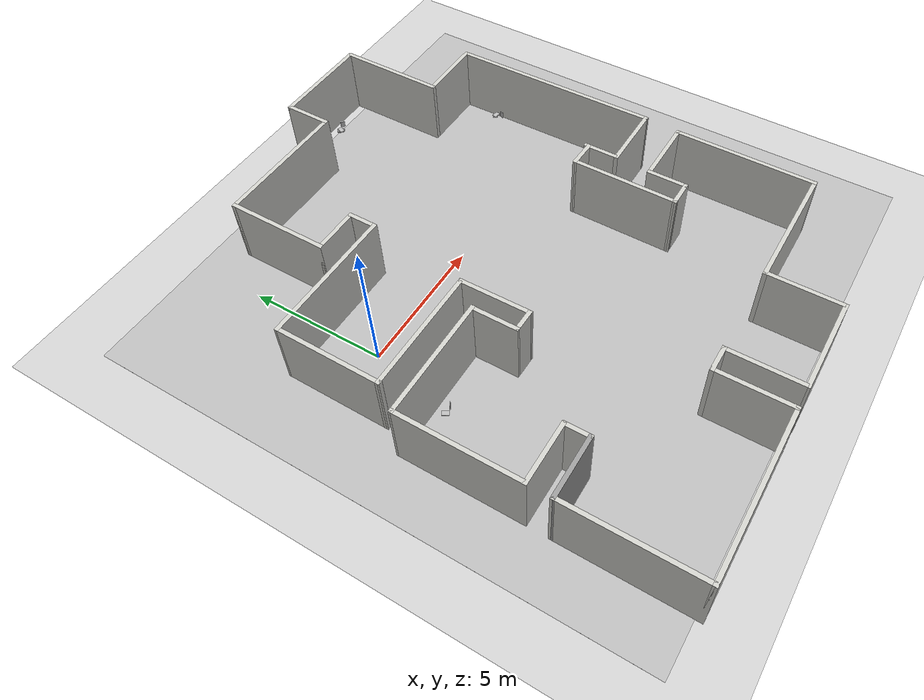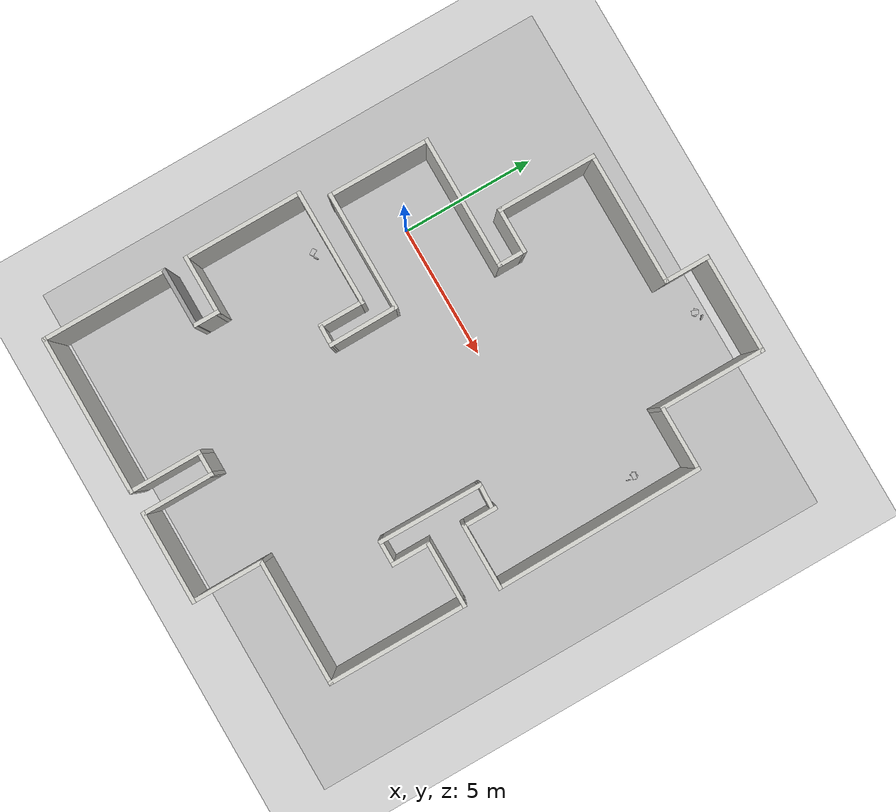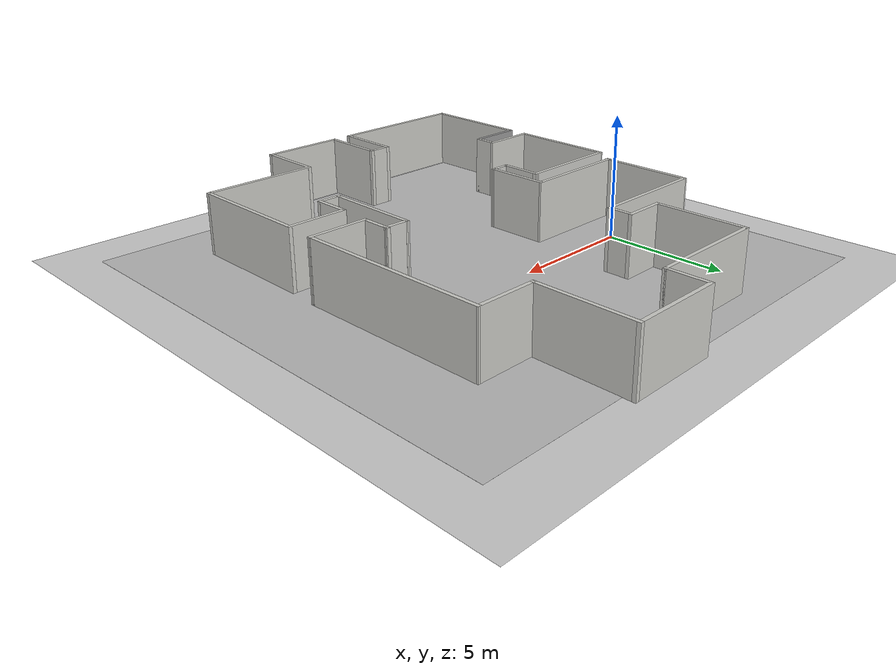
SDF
<sdf version="1.6">
 <world name="default">
  <light name="sun" type="directional">
   <pose>0 0 10 0 -0 0</pose>
   <diffuse>0.8 0.8 0.8 1</diffuse>
   <specular>0.2 0.2 0.2 1</specular>
   <attenuation>
    <range>1000</range>
    <constant>0.9</constant>
    <linear>0.01</linear>
    <quadratic>0.001</quadratic>
   </attenuation>
   <direction>-0.5 0.1 -0.9</direction>
  </light>
  <model name="ground_plane">
   <static>1</static>
   <link name="link">
    <collision name="collision">
     <geometry><plane><normal>0 0 1</normal><size>100 100</size></plane></geometry>
     <surface><friction><ode><mu>100</mu><mu2>50</mu2></ode></friction></surface>
    </collision>
    <visual name="visual">
     <cast_shadows>0</cast_shadows>
     <geometry><plane><normal>0 0 1</normal><size>100 100</size></plane></geometry>
     <material>
      <script><uri>file://media/materials/scripts/gazebo.material</uri><name>Gazebo/Grey</name></script>
     </material>
    </visual>
   </link>
  </model>
  <gravity>0 0 -9.8</gravity>
  <magnetic_field>6e-06 2.3e-05 -4.2e-05</magnetic_field>
  <atmosphere type="adiabatic"/>
  <physics name="default_physics" default="0" type="ode">
   <max_step_size>0.001</max_step_size>
   <real_time_factor>1</real_time_factor>
   <real_time_update_rate>1000</real_time_update_rate>
  </physics>
  <scene><ambient>0.4 0.4 0.4 1</ambient><background>0.7 0.7 0.7 1</background><shadows>1</shadows></scene>
  <audio><device>default</device></audio>
  <spherical_coordinates>
   <surface_model>EARTH_WGS84</surface_model>
   <latitude_deg>0</latitude_deg>
   <longitude_deg>0</longitude_deg>
   <elevation>0</elevation>
   <heading_deg>0</heading_deg>
  </spherical_coordinates>
  <model name="six_rooms_mathias">
   <model name="six_rooms">
    <model name="six_rooms">
     <pose>3e-06 -2e-06 0 0 -0 0</pose>
     <link name="Wall_10">
      <collision name="Wall_10_Collision">
       <geometry><box><size>2.25 0.15 2.5</size></box></geometry>
       <pose>0 0 1.25 0 -0 0</pose>
      </collision>
      <visual name="Wall_10_Visual">
       <pose>0 0 1.25 0 -0 0</pose>
       <geometry><box><size>2.25 0.15 2.5</size></box></geometry>
       <material>
        <script><uri>file://media/materials/scripts/gazebo.material</uri><name>Gazebo/CeilingTiled</name></script>
        <ambient>1 1 1 1</ambient>
       </material>
       <meta><layer>0</layer></meta>
      </visual>
      <pose>4.825 -6.31896 0 0 -0 1.5708</pose>
     </link>
     <link name="Wall_11">
      <collision name="Wall_11_Collision">
       <geometry><box><size>1 0.15 2.5</size></box></geometry>
       <pose>0 0 1.25 0 -0 0</pose>
      </collision>
      <visual name="Wall_11_Visual">
       <pose>0 0 1.25 0 -0 0</pose>
       <geometry><box><size>1 0.15 2.5</size></box></geometry>
       <material>
        <script><uri>file://media/materials/scripts/gazebo.material</uri><name>Gazebo/CeilingTiled</name></script>
        <ambient>1 1 1 1</ambient>
       </material>
       <meta><layer>0</layer></meta>
      </visual>
      <pose>5.25 -5.26896 0 0 -0 0</pose>
     </link>
     <link name="Wall_12">
      <collision name="Wall_12_Collision">
       <geometry><box><size>2.25 0.15 2.5</size></box></geometry>
       <pose>0 0 1.25 0 -0 0</pose>
      </collision>
      <visual name="Wall_12_Visual">
       <pose>0 0 1.25 0 -0 0</pose>
       <geometry><box><size>2.25 0.15 2.5</size></box></geometry>
       <material>
        <script><uri>file://media/materials/scripts/gazebo.material</uri><name>Gazebo/Grey</name></script>
        <ambient>1 1 1 1</ambient>
       </material>
       <meta><layer>0</layer></meta>
      </visual>
      <pose>5.675 -6.31896 0 0 -0 -1.5708</pose>
     </link>
     <link name="Wall_13">
      <collision name="Wall_13_Collision">
       <geometry><box><size>4.75 0.15 2.5</size></box></geometry>
       <pose>0 0 1.25 0 -0 0</pose>
      </collision>
      <visual name="Wall_13_Visual">
       <pose>0 0 1.25 0 -0 0</pose>
       <geometry><box><size>4.75 0.15 2.5</size></box></geometry>
       <material>
        <script><uri>file://media/materials/scripts/gazebo.material</uri><name>Gazebo/CeilingTiled</name></script>
        <ambient>1 1 1 1</ambient>
       </material>
       <meta><layer>0</layer></meta>
      </visual>
      <pose>7.975 -7.36896 0 0 -0 0</pose>
     </link>
     <link name="Wall_14">
      <collision name="Wall_14_Collision">
       <geometry><box><size>6 0.15 2.5</size></box></geometry>
       <pose>0 0 1.25 0 -0 0</pose>
      </collision>
      <visual name="Wall_14_Visual">
       <pose>0 0 1.25 0 -0 0</pose>
       <geometry><box><size>6 0.15 2.5</size></box></geometry>
       <material>
        <script><uri>file://media/materials/scripts/gazebo.material</uri><name>Gazebo/CeilingTiled</name></script>
        <ambient>1 1 1 1</ambient>
       </material>
       <meta><layer>0</layer></meta>
      </visual>
      <pose>10.275 -4.44396 0 0 -0 1.5708</pose>
     </link>
     <link name="Wall_15">
      <collision name="Wall_15_Collision">
       <geometry><box><size>2.75 0.15 2.5</size></box></geometry>
       <pose>0 0 1.25 0 -0 0</pose>
      </collision>
      <visual name="Wall_15_Visual">
       <pose>0 0 1.25 0 -0 0</pose>
       <geometry><box><size>2.75 0.15 2.5</size></box></geometry>
       <material>
        <script><uri>file://media/materials/scripts/gazebo.material</uri><name>Gazebo/CeilingTiled</name></script>
        <ambient>1 1 1 1</ambient>
       </material>
       <meta><layer>0</layer></meta>
      </visual>
      <pose>8.975 -1.51896 0 0 -0 3.14159</pose>
     </link>
     <link name="Wall_16">
      <collision name="Wall_16_Collision">
       <geometry><box><size>1 0.15 2.5</size></box></geometry>
       <pose>0 0 1.25 0 -0 0</pose>
      </collision>
      <visual name="Wall_16_Visual">
       <pose>0 0 1.25 0 -0 0</pose>
       <geometry><box><size>1 0.15 2.5</size></box></geometry>
       <material>
        <script><uri>file://media/materials/scripts/gazebo.material</uri><name>Gazebo/CeilingTiled</name></script>
        <ambient>1 1 1 1</ambient>
       </material>
       <meta><layer>0</layer></meta>
      </visual>
      <pose>7.675 -1.09396 0 0 -0 1.5708</pose>
     </link>
     <link name="Wall_17">
      <collision name="Wall_17_Collision">
       <geometry><box><size>2.66863 0.15 2.5</size></box></geometry>
       <pose>0 0 1.25 0 -0 0</pose>
      </collision>
      <visual name="Wall_17_Visual">
       <pose>0 0 1.25 0 -0 0</pose>
       <geometry><box><size>2.66863 0.15 2.5</size></box></geometry>
       <material>
        <script><uri>file://media/materials/scripts/gazebo.material</uri><name>Gazebo/CeilingTiled</name></script>
        <ambient>1 1 1 1</ambient>
       </material>
       <meta><layer>0</layer></meta>
      </visual>
      <pose>8.93431 -0.668964 0 0 -0 0</pose>
     </link>
     <link name="Wall_18">
      <collision name="Wall_18_Collision">
       <geometry><box><size>3.5 0.15 2.5</size></box></geometry>
       <pose>0 0 1.25 0 -0 0</pose>
      </collision>
      <visual name="Wall_18_Visual">
       <pose>0 0 1.25 0 -0 0</pose>
       <geometry><box><size>3.5 0.15 2.5</size></box></geometry>
       <material>
        <script><uri>file://media/materials/scripts/gazebo.material</uri><name>Gazebo/CeilingTiled</name></script>
        <ambient>1 1 1 1</ambient>
       </material>
       <meta><layer>0</layer></meta>
      </visual>
      <pose>10.275 1.00604 0 0 -0 1.5708</pose>
     </link>
     <link name="Wall_19">
      <collision name="Wall_19_Collision">
       <geometry><box><size>2.66863 0.15 2.5</size></box></geometry>
       <pose>0 0 1.25 0 -0 0</pose>
      </collision>
      <visual name="Wall_19_Visual">
       <pose>0 0 1.25 0 -0 0</pose>
       <geometry><box><size>2.66863 0.15 2.5</size></box></geometry>
       <material>
        <script><uri>file://media/materials/scripts/gazebo.material</uri><name>Gazebo/CeilingTiled</name></script>
        <ambient>1 1 1 1</ambient>
       </material>
       <meta><layer>0</layer></meta>
      </visual>
      <pose>8.93431 2.68104 0 0 -0 3.14159</pose>
     </link>
     <link name="Wall_2">
      <collision name="Wall_2_Collision">
       <geometry><box><size>5 0.15 2.5</size></box></geometry>
       <pose>0 0 1.25 0 -0 0</pose>
      </collision>
      <visual name="Wall_2_Visual">
       <pose>0 0 1.25 0 -0 0</pose>
       <geometry><box><size>5 0.15 2.5</size></box></geometry>
       <material>
        <script><uri>file://media/materials/scripts/gazebo.material</uri><name>Gazebo/CeilingTiled</name></script>
        <ambient>1 1 1 1</ambient>
       </material>
       <meta><layer>0</layer></meta>
      </visual>
      <pose>-4.125 -4.34396 0 0 -0 -1.5708</pose>
     </link>
     <link name="Wall_20">
      <collision name="Wall_20_Collision">
       <geometry><box><size>4.75 0.15 2.5</size></box></geometry>
       <pose>0 0 1.25 0 -0 0</pose>
      </collision>
      <visual name="Wall_20_Visual">
       <pose>0 0 1.25 0 -0 0</pose>
       <geometry><box><size>4.75 0.15 2.5</size></box></geometry>
       <material>
        <script><uri>file://media/materials/scripts/gazebo.material</uri><name>Gazebo/CeilingTiled</name></script>
        <ambient>1 1 1 1</ambient>
       </material>
       <meta><layer>0</layer></meta>
      </visual>
      <pose>7.675 4.98104 0 0 -0 1.5708</pose>
     </link>
     <link name="Wall_21">
      <collision name="Wall_21_Collision">
       <geometry><box><size>5.25 0.15 2.5</size></box></geometry>
       <pose>0 0 1.25 0 -0 0</pose>
      </collision>
      <visual name="Wall_21_Visual">
       <pose>0 0 1.25 0 -0 0</pose>
       <geometry><box><size>5.25 0.15 2.5</size></box></geometry>
       <material>
        <script><uri>file://media/materials/scripts/gazebo.material</uri><name>Gazebo/CeilingTiled</name></script>
        <ambient>1 1 1 1</ambient>
       </material>
       <meta><layer>0</layer></meta>
      </visual>
      <pose>5.125 7.28104 0 0 -0 3.14159</pose>
     </link>
     <link name="Wall_22">
      <collision name="Wall_22_Collision">
       <geometry><box><size>2.5 0.15 2.5</size></box></geometry>
       <pose>0 0 1.25 0 -0 0</pose>
      </collision>
      <visual name="Wall_22_Visual">
       <pose>0 0 1.25 0 -0 0</pose>
       <geometry><box><size>2.5 0.15 2.5</size></box></geometry>
       <material>
        <script><uri>file://media/materials/scripts/gazebo.material</uri><name>Gazebo/CeilingTiled</name></script>
        <ambient>1 1 1 1</ambient>
       </material>
       <meta><layer>0</layer></meta>
      </visual>
      <pose>2.575 6.10604 0 0 -0 -1.5708</pose>
     </link>
     <link name="Wall_23">
      <collision name="Wall_23_Collision">
       <geometry><box><size>1.5 0.15 2.5</size></box></geometry>
       <pose>0 0 1.25 0 -0 0</pose>
      </collision>
      <visual name="Wall_23_Visual">
       <pose>0 0 1.25 0 -0 0</pose>
       <geometry><box><size>1.5 0.15 2.5</size></box></geometry>
       <material>
        <script><uri>file://media/materials/scripts/gazebo.material</uri><name>Gazebo/CeilingTiled</name></script>
        <ambient>1 1 1 1</ambient>
       </material>
       <meta><layer>0</layer></meta>
      </visual>
      <pose>3.25 4.93103 0 0 -0 0</pose>
     </link>
     <link name="Wall_24">
      <collision name="Wall_24_Collision">
       <geometry><box><size>1 0.15 2.5</size></box></geometry>
       <pose>0 0 1.25 0 -0 0</pose>
      </collision>
      <visual name="Wall_24_Visual">
       <pose>0 0 1.25 0 -0 0</pose>
       <geometry><box><size>1 0.15 2.5</size></box></geometry>
       <material>
        <script><uri>file://media/materials/scripts/gazebo.material</uri><name>Gazebo/CeilingTiled</name></script>
        <ambient>1 1 1 1</ambient>
       </material>
       <meta><layer>0</layer></meta>
      </visual>
      <pose>3.925 4.50604 0 0 -0 -1.5708</pose>
     </link>
     <link name="Wall_25">
      <collision name="Wall_25_Collision">
       <geometry><box><size>3.95187 0.15 2.5</size></box></geometry>
       <pose>0 0 1.25 0 -0 0</pose>
      </collision>
      <visual name="Wall_25_Visual">
       <pose>0 0 1.25 0 -0 0</pose>
       <geometry><box><size>3.95187 0.15 2.5</size></box></geometry>
       <material>
        <script><uri>file://media/materials/scripts/gazebo.material</uri><name>Gazebo/CeilingTiled</name></script>
        <ambient>1 1 1 1</ambient>
       </material>
       <meta><layer>0</layer></meta>
      </visual>
      <pose>2.0241 4.09246 0 0 -0 3.13558</pose>
     </link>
     <link name="Wall_26">
      <collision name="Wall_26_Collision">
       <geometry><box><size>1.06501 0.15 2.5</size></box></geometry>
       <pose>0 0 1.25 0 -0 0</pose>
      </collision>
      <visual name="Wall_26_Visual">
       <pose>0 0 1.25 0 -0 0</pose>
       <geometry><box><size>1.06501 0.15 2.5</size></box></geometry>
       <material>
        <script><uri>file://media/materials/scripts/gazebo.material</uri><name>Gazebo/CeilingTiled</name></script>
        <ambient>1 1 1 1</ambient>
       </material>
       <meta><layer>0</layer></meta>
      </visual>
      <pose>0.139782 4.56109 0 0 -0 1.53453</pose>
     </link>
     <link name="Wall_27">
      <collision name="Wall_27_Collision">
       <geometry><box><size>1.25 0.15 2.5</size></box></geometry>
       <pose>0 0 1.25 0 -0 0</pose>
      </collision>
      <visual name="Wall_27_Visual">
       <pose>0 0 1.25 0 -0 0</pose>
       <geometry><box><size>1.25 0.15 2.5</size></box></geometry>
       <material>
        <script><uri>file://media/materials/scripts/gazebo.material</uri><name>Gazebo/CeilingTiled</name></script>
        <ambient>1 1 1 1</ambient>
       </material>
       <meta><layer>0</layer></meta>
      </visual>
      <pose>0.625 5.0183 0 0 -0 0</pose>
     </link>
     <link name="Wall_28">
      <collision name="Wall_28_Collision">
       <geometry><box><size>2.5 0.15 2.5</size></box></geometry>
       <pose>0 0 1.25 0 -0 0</pose>
      </collision>
      <visual name="Wall_28_Visual">
       <pose>0 0 1.25 0 -0 0</pose>
       <geometry><box><size>2.5 0.15 2.5</size></box></geometry>
       <material>
        <script><uri>file://media/materials/scripts/gazebo.material</uri><name>Gazebo/CeilingTiled</name></script>
        <ambient>1 1 1 1</ambient>
       </material>
       <meta><layer>0</layer></meta>
      </visual>
      <pose>1.25637 6.19329 0 0 -0 1.5708</pose>
     </link>
     <link name="Wall_29">
      <collision name="Wall_29_Collision">
       <geometry><box><size>7.83187 0.15 2.5</size></box></geometry>
       <pose>0 0 1.25 0 -0 0</pose>
      </collision>
      <visual name="Wall_29_Visual">
       <pose>0 0 1.25 0 -0 0</pose>
       <geometry><box><size>7.83187 0.15 2.5</size></box></geometry>
       <material>
        <script><uri>file://media/materials/scripts/gazebo.material</uri><name>Gazebo/CeilingTiled</name></script>
        <ambient>1 1 1 1</ambient>
       </material>
       <meta><layer>0</layer></meta>
      </visual>
      <pose>-2.58432 7.32467 0 0 -0 -3.13023</pose>
     </link>
     <link name="Wall_3">
      <collision name="Wall_3_Collision">
       <geometry><box><size>3.88482 0.15 2.5</size></box></geometry>
       <pose>0 0 1.25 0 -0 0</pose>
      </collision>
      <visual name="Wall_3_Visual">
       <pose>0 0 1.25 0 -0 0</pose>
       <geometry><box><size>3.88482 0.15 2.5</size></box></geometry>
       <material>
        <script><uri>file://media/materials/scripts/gazebo.material</uri><name>Gazebo/CeilingTiled</name></script>
        <ambient>1 1 1 1</ambient>
       </material>
       <meta><layer>0</layer></meta>
      </visual>
      <pose>-2.25761 -6.77771 0 0 -0 -0.004683</pose>
     </link>
     <link name="Wall_30">
      <collision name="Wall_30_Collision">
       <geometry><box><size>2.5 0.15 2.5</size></box></geometry>
       <pose>0 0 1.25 0 -0 0</pose>
      </collision>
      <visual name="Wall_30_Visual">
       <pose>0 0 1.25 0 -0 0</pose>
       <geometry><box><size>2.5 0.15 2.5</size></box></geometry>
       <material>
        <script><uri>file://media/materials/scripts/gazebo.material</uri><name>Gazebo/CeilingTiled</name></script>
        <ambient>1 1 1 1</ambient>
       </material>
       <meta><layer>0</layer></meta>
      </visual>
      <pose>-6.425 6.10604 0 0 -0 -1.5708</pose>
     </link>
     <link name="Wall_31">
      <collision name="Wall_31_Collision">
       <geometry><box><size>4 0.15 2.5</size></box></geometry>
       <pose>0 0 1.25 0 -0 0</pose>
      </collision>
      <visual name="Wall_31_Visual">
       <pose>0 0 1.25 0 -0 0</pose>
       <geometry><box><size>4 0.15 2.5</size></box></geometry>
       <material>
        <script><uri>file://media/materials/scripts/gazebo.material</uri><name>Gazebo/CeilingTiled</name></script>
        <ambient>1 1 1 1</ambient>
       </material>
       <meta><layer>0</layer></meta>
      </visual>
      <pose>-8.35 4.93103 0 0 -0 3.14159</pose>
     </link>
     <link name="Wall_32">
      <collision name="Wall_32_Collision">
       <geometry><box><size>3.75 0.15 2.5</size></box></geometry>
       <pose>0 0 1.25 0 -0 0</pose>
      </collision>
      <visual name="Wall_32_Visual">
       <pose>0 0 1.25 0 -0 0</pose>
       <geometry><box><size>3.75 0.15 2.5</size></box></geometry>
       <material>
        <script><uri>file://media/materials/scripts/gazebo.material</uri><name>Gazebo/CeilingTiled</name></script>
        <ambient>1 1 1 1</ambient>
       </material>
       <meta><layer>0</layer></meta>
      </visual>
      <pose>-10.275 3.13104 0 0 -0 -1.5708</pose>
     </link>
     <link name="Wall_33">
      <collision name="Wall_33_Collision">
       <geometry><box><size>1.75 0.15 2.5</size></box></geometry>
       <pose>0 0 1.25 0 -0 0</pose>
      </collision>
      <visual name="Wall_33_Visual">
       <pose>0 0 1.25 0 -0 0</pose>
       <geometry><box><size>1.75 0.15 2.5</size></box></geometry>
       <material>
        <script><uri>file://media/materials/scripts/gazebo.material</uri><name>Gazebo/CeilingTiled</name></script>
        <ambient>1 1 1 1</ambient>
       </material>
       <meta><layer>0</layer></meta>
      </visual>
      <pose>-9.475 1.33104 0 0 -0 0</pose>
     </link>
     <link name="Wall_34">
      <collision name="Wall_34_Collision">
       <geometry><box><size>5 0.15 2.5</size></box></geometry>
       <pose>0 0 1.25 0 -0 0</pose>
      </collision>
      <visual name="Wall_34_Visual">
       <pose>0 0 1.25 0 -0 0</pose>
       <geometry><box><size>5 0.15 2.5</size></box></geometry>
       <material>
        <script><uri>file://media/materials/scripts/gazebo.material</uri><name>Gazebo/CeilingTiled</name></script>
        <ambient>1 1 1 1</ambient>
       </material>
       <meta><layer>0</layer></meta>
      </visual>
      <pose>-8.675 -1.09396 0 0 -0 -1.5708</pose>
     </link>
     <link name="Wall_35">
      <collision name="Wall_35_Collision">
       <geometry><box><size>3.75 0.15 2.5</size></box></geometry>
       <pose>0 0 1.25 0 -0 0</pose>
      </collision>
      <visual name="Wall_35_Visual">
       <pose>0 0 1.25 0 -0 0</pose>
       <geometry><box><size>3.75 0.15 2.5</size></box></geometry>
       <material>
        <script><uri>file://media/materials/scripts/gazebo.material</uri><name>Gazebo/CeilingTiled</name></script>
        <ambient>1 1 1 1</ambient>
       </material>
       <meta><layer>0</layer></meta>
      </visual>
      <pose>-6.875 -3.51896 0 0 -0 0</pose>
     </link>
     <link name="Wall_36">
      <collision name="Wall_36_Collision">
       <geometry><box><size>1.75 0.15 2.5</size></box></geometry>
       <pose>0 0 1.25 0 -0 0</pose>
      </collision>
      <visual name="Wall_36_Visual">
       <pose>0 0 1.25 0 -0 0</pose>
       <geometry><box><size>1.75 0.15 2.5</size></box></geometry>
       <material>
        <script><uri>file://media/materials/scripts/gazebo.material</uri><name>Gazebo/CeilingTiled</name></script>
        <ambient>1 1 1 1</ambient>
       </material>
       <meta><layer>0</layer></meta>
      </visual>
      <pose>-5.075 -2.71896 0 0 -0 1.5708</pose>
     </link>
     <link name="Wall_37">
      <collision name="Wall_37_Collision">
       <geometry><box><size>1.1 0.15 2.5</size></box></geometry>
       <pose>0 0 1.25 0 -0 0</pose>
      </collision>
      <visual name="Wall_37_Visual">
       <pose>0 0 1.25 0 -0 0</pose>
       <geometry><box><size>1.1 0.15 2.5</size></box></geometry>
       <material>
        <script><uri>file://media/materials/scripts/gazebo.material</uri><name>Gazebo/CeilingTiled</name></script>
        <ambient>1 1 1 1</ambient>
       </material>
       <meta><layer>0</layer></meta>
      </visual>
      <pose>-4.6 -1.91896 0 0 -0 0</pose>
     </link>
     <link name="Wall_4">
      <collision name="Wall_4_Collision">
       <geometry><box><size>4.5 0.15 2.5</size></box></geometry>
       <pose>0 0 1.25 0 -0 0</pose>
      </collision>
      <visual name="Wall_4_Visual">
       <pose>0 0 1.25 0 -0 0</pose>
       <geometry><box><size>4.5 0.15 2.5</size></box></geometry>
       <material>
        <script><uri>file://media/materials/scripts/gazebo.material</uri><name>Gazebo/CeilingTiled</name></script>
        <ambient>1 1 1 1</ambient>
       </material>
       <meta><layer>0</layer></meta>
      </visual>
      <pose>-0.407709 -4.61145 0 0 -0 1.5708</pose>
     </link>
     <link name="Wall_5">
      <collision name="Wall_5_Collision">
       <geometry><box><size>2.61528 0.15 2.5</size></box></geometry>
       <pose>0 0 1.25 0 -0 0</pose>
      </collision>
      <visual name="Wall_5_Visual">
       <pose>0 0 1.25 0 -0 0</pose>
       <geometry><box><size>2.61528 0.15 2.5</size></box></geometry>
       <material>
        <script><uri>file://media/materials/scripts/gazebo.material</uri><name>Gazebo/CeilingTiled</name></script>
        <ambient>1 1 1 1</ambient>
       </material>
       <meta><layer>0</layer></meta>
      </visual>
      <pose>0.84239 -2.42771 0 0 -0 0.007095</pose>
     </link>
     <link name="Wall_6">
      <collision name="Wall_6_Collision">
       <geometry><box><size>0.870069 0.15 2.5</size></box></geometry>
       <pose>0 0 1.25 0 -0 0</pose>
      </collision>
      <visual name="Wall_6_Visual">
       <pose>0 0 1.25 0 -0 0</pose>
       <geometry><box><size>0.870069 0.15 2.5</size></box></geometry>
       <material>
        <script><uri>file://media/materials/scripts/gazebo.material</uri><name>Gazebo/CeilingTiled</name></script>
        <ambient>1 1 1 1</ambient>
       </material>
       <meta><layer>0</layer></meta>
      </visual>
      <pose>2.07 -2.77896 0 0 -0 -1.58468</pose>
     </link>
     <link name="Wall_7">
      <collision name="Wall_7_Collision">
       <geometry><box><size>1.75 0.15 2.5</size></box></geometry>
       <pose>0 0 1.25 0 -0 0</pose>
      </collision>
      <visual name="Wall_7_Visual">
       <pose>0 0 1.25 0 -0 0</pose>
       <geometry><box><size>1.75 0.15 2.5</size></box></geometry>
       <material>
        <script><uri>file://media/materials/scripts/gazebo.material</uri><name>Gazebo/CeilingTiled</name></script>
        <ambient>1 1 1 1</ambient>
       </material>
       <meta><layer>0</layer></meta>
      </visual>
      <pose>1.265 -3.14896 0 0 -0 3.14159</pose>
     </link>
     <link name="Wall_8">
      <collision name="Wall_8_Collision">
       <geometry><box><size>4.38001 0.15 2.5</size></box></geometry>
       <pose>0 0 1.25 0 -0 0</pose>
      </collision>
      <visual name="Wall_8_Visual">
       <pose>0 0 1.25 0 -0 0</pose>
       <geometry><box><size>4.38001 0.15 2.5</size></box></geometry>
       <material>
        <script><uri>file://media/materials/scripts/gazebo.material</uri><name>Gazebo/CeilingTiled</name></script>
        <ambient>1 1 1 1</ambient>
       </material>
       <meta><layer>0</layer></meta>
      </visual>
      <pose>0.47 -5.25396 0 0 -0 -1.56843</pose>
     </link>
     <link name="Wall_9">
      <collision name="Wall_9_Collision">
       <geometry><box><size>4.5 0.15 2.5</size></box></geometry>
       <pose>0 0 1.25 0 -0 0</pose>
      </collision>
      <visual name="Wall_9_Visual">
       <pose>0 0 1.25 0 -0 0</pose>
       <geometry><box><size>4.5 0.15 2.5</size></box></geometry>
       <material>
        <script><uri>file://media/materials/scripts/gazebo.material</uri><name>Gazebo/CeilingTiled</name></script>
        <ambient>1 1 1 1</ambient>
       </material>
       <meta><layer>0</layer></meta>
      </visual>
      <pose>2.65 -7.36896 0 0 -0 0</pose>
     </link>
     <static>1</static>
    </model>
    <static>0</static>
    <pose>0 4e-06 0 0 0 -1.5708</pose>
   </model>
   <static>0</static>
   <pose>4.83611 -2.17799 0 0 -0 0</pose>
  </model>
  <model name="Untitled_3">
   <model name="book_12">
    <link name="cover">
     <pose>0 -0.000108 0.015405 0 -0 0</pose>
     <visual name="visual">
      <geometry><box><size>0.245 0.16 0.03</size></box></geometry>
      <material>
       <script>
        <uri>model://book_12/materials/scripts</uri>
        <uri>model://book_12/materials/textures</uri>
        <name>book_12</name>
       </script>
      </material>
     </visual>
     <collision name="collision"><geometry><box><size>0.245 0.16 0.03</size></box></geometry></collision>
    </link>
    <link name="page">
     <pose>0 0.000608 0.015405 0 -0 0</pose>
     <visual name="visual">
      <geometry><box><size>0.24502 0.15862 0.028</size></box></geometry>
      <material>
       <lighting>1</lighting>
       <ambient>1 1 1 1</ambient>
       <diffuse>1 1 1 1</diffuse>
       <specular>0.01 0.01 0.01 1</specular>
       <emissive>0 0 0 1</emissive>
       <shader type="vertex"><normal_map>__default__</normal_map></shader>
      </material>
     </visual>
     <collision name="collision"><geometry><box><size>0.245 0.16 0.03</size></box></geometry></collision>
    </link>
    <static>1</static>
    <pose>4e-06 3e-06 0 0 -0 0</pose>
   </model>
   <static>0</static>
   <pose>7.59028 7.22247 0.607314 5e-06 -4e-06 -0.983222</pose>
  </model>
  <model name="Untitled_4">
   <model name="book_16">
    <link name="cover">
     <pose>0 -0.000108 0.015405 0 -0 0</pose>
     <visual name="visual">
      <geometry><box><size>0.245 0.16 0.03</size></box></geometry>
      <material>
       <script>
        <uri>model://book_16/materials/scripts</uri>
        <uri>model://book_16/materials/textures</uri>
        <name>book_16</name>
       </script>
      </material>
     </visual>
     <collision name="collision"><geometry><box><size>0.245 0.16 0.03</size></box></geometry></collision>
    </link>
    <link name="page">
     <pose>0 0.000608 0.015405 0 -0 0</pose>
     <visual name="visual">
      <geometry><box><size>0.24502 0.15862 0.028</size></box></geometry>
      <material>
       <lighting>1</lighting>
       <ambient>1 1 1 1</ambient>
       <diffuse>1 1 1 1</diffuse>
       <specular>0.01 0.01 0.01 1</specular>
       <emissive>0 0 0 1</emissive>
       <shader type="vertex"><normal_map>__default__</normal_map></shader>
      </material>
     </visual>
     <collision name="collision"><geometry><box><size>0.245 0.16 0.03</size></box></geometry></collision>
    </link>
    <static>1</static>
    <pose>-3e-06 3e-06 0 0 -0 0</pose>
   </model>
   <static>0</static>
   <pose>7.85571 7.33217 0.730236 -2.36341 -1.57079 -3.13439</pose>
  </model>
  <model name="Untitled_5">
   <model name="book_4">
    <link name="cover">
     <pose>0 -0.000108 0.01 0 -0 0</pose>
     <visual name="visual">
      <geometry><box><size>0.245 0.16 0.02</size></box></geometry>
      <material>
       <script>
        <uri>model://book_4/materials/scripts</uri>
        <uri>model://book_4/materials/textures</uri>
        <name>book_4</name>
       </script>
      </material>
      <cast_shadows>0</cast_shadows>
     </visual>
     <collision name="collision"><geometry><box><size>0.245 0.16 0.02</size></box></geometry></collision>
    </link>
    <link name="page">
     <pose>0 0.000608 0.01 0 -0 0</pose>
     <visual name="visual">
      <geometry><box><size>0.24502 0.15862 0.018</size></box></geometry>
      <material>
       <lighting>1</lighting>
       <ambient>1 1 1 1</ambient>
       <diffuse>1 1 1 1</diffuse>
       <specular>0.01 0.01 0.01 1</specular>
       <emissive>0 0 0 1</emissive>
       <shader type="vertex"><normal_map>__default__</normal_map></shader>
      </material>
      <cast_shadows>0</cast_shadows>
     </visual>
     <collision name="collision"><geometry><box><size>0.245 0.16 0.018</size></box></geometry></collision>
    </link>
    <static>1</static>
    <pose>4e-06 -5e-06 0 0 -0 0</pose>
   </model>
   <static>0</static>
   <pose>11.412 2.53575 0.596711 0 -0 0.407119</pose>
  </model>
  <model name="Untitled_6">
   <model name="book_7">
    <link name="cover">
     <pose>0 -0.000108 0.005 0 -0 0</pose>
     <visual name="visual">
      <geometry><box><size>0.245 0.16 0.01</size></box></geometry>
      <material>
       <script>
        <uri>model://book_7/materials/scripts</uri>
        <uri>model://book_7/materials/textures</uri>
        <name>book_7</name>
       </script>
      </material>
     </visual>
     <collision name="collision"><geometry><box><size>0.245 0.16 0.01</size></box></geometry></collision>
    </link>
    <link name="page">
     <pose>0 0.000608 0.005 0 -0 0</pose>
     <visual name="visual">
      <geometry><box><size>0.24502 0.15862 0.008</size></box></geometry>
      <material>
       <lighting>1</lighting>
       <ambient>1 1 1 1</ambient>
       <diffuse>1 1 1 1</diffuse>
       <specular>0.01 0.01 0.01 1</specular>
       <emissive>0 0 0 1</emissive>
       <shader type="vertex"><normal_map>__default__</normal_map></shader>
      </material>
     </visual>
     <collision name="collision"><geometry><box><size>0.245 0.16 0.008</size></box></geometry></collision>
    </link>
    <static>1</static>
    <pose>1e-06 2e-06 0 0 -0 0</pose>
   </model>
   <static>0</static>
   <pose>11.4559 2.27255 0.727891 2.88786 -1.57079 3.13985</pose>
  </model>
  <model name="Untitled_4_clone">
   <model name="book_16">
    <link name="cover">
     <pose>0 -0.000108 0.015405 0 -0 0</pose>
     <visual name="visual">
      <geometry><box><size>0.245 0.16 0.03</size></box></geometry>
      <material>
       <script>
        <uri>model://book_16/materials/scripts</uri>
        <uri>model://book_16/materials/textures</uri>
        <name>book_16</name>
       </script>
      </material>
     </visual>
     <collision name="collision"><geometry><box><size>0.245 0.16 0.03</size></box></geometry></collision>
    </link>
    <link name="page">
     <pose>0 0.000608 0.015405 0 -0 0</pose>
     <visual name="visual">
      <geometry><box><size>0.24502 0.15862 0.028</size></box></geometry>
      <material>
       <lighting>1</lighting>
       <ambient>1 1 1 1</ambient>
       <diffuse>1 1 1 1</diffuse>
       <specular>0.01 0.01 0.01 1</specular>
       <emissive>0 0 0 1</emissive>
       <shader type="vertex"><normal_map>__default__</normal_map></shader>
      </material>
     </visual>
     <collision name="collision"><geometry><box><size>0.245 0.16 0.03</size></box></geometry></collision>
    </link>
    <static>1</static>
    <pose>-3e-06 3e-06 0 0 -0 0</pose>
   </model>
   <static>0</static>
   <pose>-0.674265 -3.24168 0.656128 -0.997964 -1.57079 3.11882</pose>
  </model>
  <model name="Untitled_6_clone">
   <model name="book_7">
    <link name="cover">
     <pose>0 -0.000108 0.005 0 -0 0</pose>
     <visual name="visual">
      <geometry><box><size>0.245 0.16 0.01</size></box></geometry>
      <material>
       <script>
        <uri>model://book_7/materials/scripts</uri>
        <uri>model://book_7/materials/textures</uri>
        <name>book_7</name>
       </script>
      </material>
     </visual>
     <collision name="collision"><geometry><box><size>0.245 0.16 0.01</size></box></geometry></collision>
    </link>
    <link name="page">
     <pose>0 0.000608 0.005 0 -0 0</pose>
     <visual name="visual">
      <geometry><box><size>0.24502 0.15862 0.008</size></box></geometry>
      <material>
       <lighting>1</lighting>
       <ambient>1 1 1 1</ambient>
       <diffuse>1 1 1 1</diffuse>
       <specular>0.01 0.01 0.01 1</specular>
       <emissive>0 0 0 1</emissive>
       <shader type="vertex"><normal_map>__default__</normal_map></shader>
      </material>
     </visual>
     <collision name="collision"><geometry><box><size>0.245 0.16 0.008</size></box></geometry></collision>
    </link>
    <static>1</static>
    <pose>1e-06 2e-06 0 0 -0 0</pose>
   </model>
   <static>0</static>
   <pose>-0.911154 -3.24736 0.535966 -3e-06 2e-06 2.10072</pose>
  </model>
  <model name="Untitled_14">
   <model name="Floor_room">
    <link name="main">
     <pose>0 0 0.01 0 -0 0</pose>
     <collision name="main_Collision"><geometry><box><size>20 20 0.001</size></box></geometry></collision>
     <visual name="main_Visual">
      <geometry><box><size>20 20 0.001</size></box></geometry>
      <material>
       <script>
        <uri>model://Floor_room/materials/scripts</uri>
        <uri>model://Floor_room/materials/textures</uri>
        <name>floor_room</name>
       </script>
      </material>
     </visual>
    </link>
    <static>1</static>
    <pose>1e-06 -5e-06 0 0 -0 0</pose>
   </model>
   <static>0</static>
   <pose>5.5324 -2.28083 -0 0 0 -1.5708</pose>
  </model>
  <model name="Untitled_4_clone_clone">
   <model name="book_16">
    <link name="cover">
     <pose>0 -0.000108 0.015405 0 -0 0</pose>
     <visual name="visual">
      <geometry><box><size>0.245 0.16 0.03</size></box></geometry>
      <material>
       <script>
        <uri>model://book_16/materials/scripts</uri>
        <uri>model://book_16/materials/textures</uri>
        <name>book_16</name>
       </script>
      </material>
     </visual>
     <collision name="collision"><geometry><box><size>0.245 0.16 0.03</size></box></geometry></collision>
    </link>
    <link name="page">
     <pose>0 0.000608 0.015405 0 -0 0</pose>
     <visual name="visual">
      <geometry><box><size>0.24502 0.15862 0.028</size></box></geometry>
      <material>
       <lighting>1</lighting>
       <ambient>1 1 1 1</ambient>
       <diffuse>1 1 1 1</diffuse>
       <specular>0.01 0.01 0.01 1</specular>
       <emissive>0 0 0 1</emissive>
       <shader type="vertex"><normal_map>__default__</normal_map></shader>
      </material>
     </visual>
     <collision name="collision"><geometry><box><size>0.245 0.16 0.03</size></box></geometry></collision>
    </link>
    <static>1</static>
    <pose>-3e-06 3e-06 0 0 -0 0</pose>
   </model>
   <static>0</static>
   <pose>-0.915655 -3.24385 0.546334 5e-06 -3e-06 -1.02074</pose>
  </model>
  <model name="Untitled_3_clone">
   <model name="book_12">
    <link name="cover">
     <pose>0 -0.000108 0.015405 0 -0 0</pose>
     <visual name="visual">
      <geometry><box><size>0.245 0.16 0.03</size></box></geometry>
      <material>
       <script>
        <uri>model://book_12/materials/scripts</uri>
        <uri>model://book_12/materials/textures</uri>
        <name>book_12</name>
       </script>
      </material>
     </visual>
     <collision name="collision"><geometry><box><size>0.245 0.16 0.03</size></box></geometry></collision>
    </link>
    <link name="page">
     <pose>0 0.000608 0.015405 0 -0 0</pose>
     <visual name="visual">
      <geometry><box><size>0.24502 0.15862 0.028</size></box></geometry>
      <material>
       <lighting>1</lighting>
       <ambient>1 1 1 1</ambient>
       <diffuse>1 1 1 1</diffuse>
       <specular>0.01 0.01 0.01 1</specular>
       <emissive>0 0 0 1</emissive>
       <shader type="vertex"><normal_map>__default__</normal_map></shader>
      </material>
     </visual>
     <collision name="collision"><geometry><box><size>0.245 0.16 0.03</size></box></geometry></collision>
    </link>
    <static>1</static>
    <pose>4e-06 3e-06 0 0 -0 0</pose>
   </model>
   <static>0</static>
   <pose>7.5789 7.23009 0.640116 -4e-06 5e-06 2.29914</pose>
  </model>
  <model name="Untitled_4_clone_0">
   <model name="book_16">
    <link name="cover">
     <pose>0 -0.000108 0.015405 0 -0 0</pose>
     <visual name="visual">
      <geometry><box><size>0.245 0.16 0.03</size></box></geometry>
      <material>
       <script>
        <uri>model://book_16/materials/scripts</uri>
        <uri>model://book_16/materials/textures</uri>
        <name>book_16</name>
       </script>
      </material>
     </visual>
     <collision name="collision"><geometry><box><size>0.245 0.16 0.03</size></box></geometry></collision>
    </link>
    <link name="page">
     <pose>0 0.000608 0.015405 0 -0 0</pose>
     <visual name="visual">
      <geometry><box><size>0.24502 0.15862 0.028</size></box></geometry>
      <material>
       <lighting>1</lighting>
       <ambient>1 1 1 1</ambient>
       <diffuse>1 1 1 1</diffuse>
       <specular>0.01 0.01 0.01 1</specular>
       <emissive>0 0 0 1</emissive>
       <shader type="vertex"><normal_map>__default__</normal_map></shader>
      </material>
     </visual>
     <collision name="collision"><geometry><box><size>0.245 0.16 0.03</size></box></geometry></collision>
    </link>
    <static>1</static>
    <pose>-3e-06 3e-06 0 0 -0 0</pose>
   </model>
   <static>0</static>
   <pose>7.58239 7.21579 0.670952 -6e-06 -2e-06 1.20104</pose>
  </model>
  <model name="Untitled_4_clone_0_clone">
   <model name="book_16">
    <link name="cover">
     <pose>0 -0.000108 0.015405 0 -0 0</pose>
     <visual name="visual">
      <geometry><box><size>0.245 0.16 0.03</size></box></geometry>
      <material>
       <script>
        <uri>model://book_16/materials/scripts</uri>
        <uri>model://book_16/materials/textures</uri>
        <name>book_16</name>
       </script>
      </material>
     </visual>
     <collision name="collision"><geometry><box><size>0.245 0.16 0.03</size></box></geometry></collision>
    </link>
    <link name="page">
     <pose>0 0.000608 0.015405 0 -0 0</pose>
     <visual name="visual">
      <geometry><box><size>0.24502 0.15862 0.028</size></box></geometry>
      <material>
       <lighting>1</lighting>
       <ambient>1 1 1 1</ambient>
       <diffuse>1 1 1 1</diffuse>
       <specular>0.01 0.01 0.01 1</specular>
       <emissive>0 0 0 1</emissive>
       <shader type="vertex"><normal_map>__default__</normal_map></shader>
      </material>
     </visual>
     <collision name="collision"><geometry><box><size>0.245 0.16 0.03</size></box></geometry></collision>
    </link>
    <static>1</static>
    <pose>-3e-06 3e-06 0 0 -0 0</pose>
   </model>
   <static>0</static>
   <pose>11.4338 2.52468 0.617499 1e-06 -6e-06 -0.277424</pose>
  </model>
  <model name="Untitled_6_clone_0">
   <model name="book_7">
    <link name="cover">
     <pose>0 -0.000108 0.005 0 -0 0</pose>
     <visual name="visual">
      <geometry><box><size>0.245 0.16 0.01</size></box></geometry>
      <material>
       <script>
        <uri>model://book_7/materials/scripts</uri>
        <uri>model://book_7/materials/textures</uri>
        <name>book_7</name>
       </script>
      </material>
     </visual>
     <collision name="collision"><geometry><box><size>0.245 0.16 0.01</size></box></geometry></collision>
    </link>
    <link name="page">
     <pose>0 0.000608 0.005 0 -0 0</pose>
     <visual name="visual">
      <geometry><box><size>0.24502 0.15862 0.008</size></box></geometry>
      <material>
       <lighting>1</lighting>
       <ambient>1 1 1 1</ambient>
       <diffuse>1 1 1 1</diffuse>
       <specular>0.01 0.01 0.01 1</specular>
       <emissive>0 0 0 1</emissive>
       <shader type="vertex"><normal_map>__default__</normal_map></shader>
      </material>
     </visual>
     <collision name="collision"><geometry><box><size>0.245 0.16 0.008</size></box></geometry></collision>
    </link>
    <static>1</static>
    <pose>1e-06 2e-06 0 0 -0 0</pose>
   </model>
   <static>0</static>
   <pose>11.4256 2.51354 0.647938 1e-06 -6e-06 -0.109806</pose>
  </model>
 </world>
</sdf>
